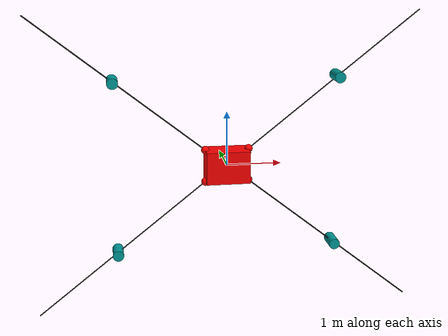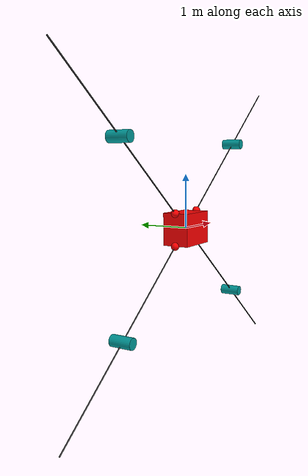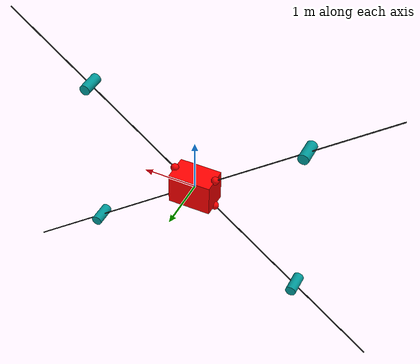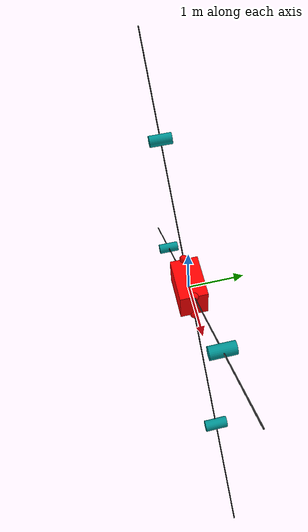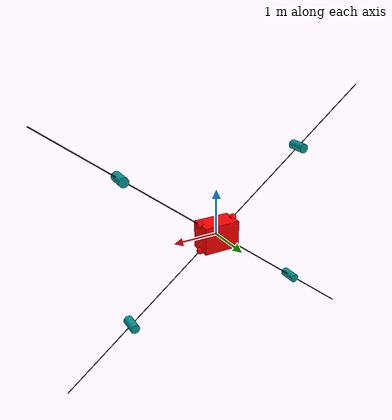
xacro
<?xml version="1.0"?>
<robot xmlns:xacro="http://www.ros.org/wiki/xacro" name="wallbot">
    <xacro:arg name="initial_positions_file" default="initial_positions.yaml" />

    <!-- Import wallbot urdf file -->
    <xacro:include filename="$(find wallbot_urdf)/urdf/wallbot.urdf" />

    <!-- Import control_xacro -->
    <xacro:include filename="wallbot.ros2_control.xacro" />

    <xacro:wallbot_ros2_control name="FakeSystem" initial_positions_file="$(arg initial_positions_file)"/>

</robot>

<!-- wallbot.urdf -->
<robot name="wallbot">

    <material name="cable_grey">
        <color rgba="0.2 0.2 0.2 1"/>
    </material>

    <material name="anchor_green">
        <color rgba="0 0.6 0.6 1"/>
    </material>

    <material name="wallbot_red">
        <color rgba="1 0 0 1"/>
    </material>

    <link name="central_body">
        <visual>
            <geometry>
                <box size="0.8 0.5 0.6"/>
            </geometry>
            <material name="wallbot_red"/>
        </visual>
    </link>

    <!--Top Left Links-->

    <link name="top_left_socket">
        <visual>
            <geometry>
                <sphere radius="0.075"/>
            </geometry>
            <material name="wallbot_red"/>
        </visual>
    </link>

    <link name="top_left_cable">
        <visual>
            <geometry>
                <cylinder length="4" radius="0.01"/>
            </geometry>
            <material name="cable_grey"/>
            <origin xyz="0 0 2" rpy="0 0 0"/>
        </visual>
    </link>
    <link name="top_left_anchor">
        <visual>
            <geometry>
                <cylinder length="0.4" radius="0.1"/>
            </geometry>
            <material name="anchor_green"/>
            <origin rpy="1.57075 0 0" xyz="0 0 0.1"/>
        </visual>
    </link>

    <!--Top Left Joints (Fixed -> Revolute -> Prismatic)-->

    <joint name="base_to_top_left_socket" type="fixed">
        <parent link="central_body"/>
        <child link="top_left_socket"/>
        <origin xyz="0.4 0 0.3"/>
    </joint>

    <joint name="top_left_socket_cable_connector" type="revolute">
        <axis xyz="0 1 0"/>
        <limit effort="1000.00" lower="-1.57" upper="1.57" velocity="0.5"/>
        <parent link="top_left_socket"/>
        <child link="top_left_cable"/>
        <origin xyz="0 0 0" rpy="0 0.9 0"/>
    </joint>

    <joint name="top_left_prismatic_joint" type="prismatic">
        <axis xyz="0 0 1"/>
        <limit effort="1000.00" lower="-2.0" upper="2.0" velocity="0.5"/>
        <parent link="top_left_cable"/>
        <child link="top_left_anchor"/>
        <origin xyz="0 0 2"/>
    </joint>

    <!--Top Right Links-->

    <link name="top_right_socket">
        <visual>
            <geometry>
                <sphere radius="0.075"/>
            </geometry>
            <material name="wallbot_red"/>
        </visual>
    </link>

    <link name="top_right_cable">
        <visual>
            <geometry>
                <cylinder length="4" radius="0.01"/>
            </geometry>
            <material name="cable_grey"/>
            <origin xyz="0 0 2" rpy="0 0 0"/>
        </visual>
    </link>
    <link name="top_right_anchor">
        <visual>
            <geometry>
                <cylinder length="0.4" radius="0.1"/>
            </geometry>
            <material name="anchor_green"/>
            <origin rpy="1.57075 0 0" xyz="0 0 0.1"/>
        </visual>
    </link>

    <!--Top Right Joints (Fixed -> Revolute -> Prismatic)-->

    <joint name="base_to_top_right_socket" type="fixed">
        <parent link="central_body"/>
        <child link="top_right_socket"/>
        <origin xyz="-0.4 0 0.3"/>
    </joint>

    <joint name="top_right_socket_cable_connector" type="revolute">
        <axis xyz="0 1 0"/>
        <limit effort="1000.00" lower="-1.57" upper="1.57" velocity="0.5"/>
        <parent link="top_right_socket"/>
        <child link="top_right_cable"/>
        <origin xyz="0 0 0" rpy="0 -0.9 0"/>
    </joint>

    <joint name="top_right_prismatic_joint" type="prismatic">
        <axis xyz="0 0 1"/>
        <limit effort="1000.00" lower="-2.0" upper="2.0" velocity="0.5"/>
        <parent link="top_right_cable"/>
        <child link="top_right_anchor"/>
        <origin xyz="0 0 2"/>
    </joint>

    <!--Bottom Left Links-->

    <link name="bottom_left_socket">
        <visual>
            <geometry>
                <sphere radius="0.075"/>
            </geometry>
            <material name="wallbot_red"/>
        </visual>
    </link>

    <link name="bottom_left_cable">
        <visual>
            <geometry>
                <cylinder length="4" radius="0.01"/>
            </geometry>
            <material name="cable_grey"/>
            <origin xyz="0 0 2" rpy="0 0 0"/>
        </visual>
    </link>
    <link name="bottom_left_anchor">
        <visual>
            <geometry>
                <cylinder length="0.4" radius="0.1"/>
            </geometry>
            <material name="anchor_green"/>
            <origin rpy="1.57075 0 0" xyz="0 0 0.1"/>
        </visual>
    </link>

    <!--Bottom Left Joints (Fixed -> Revolute -> Prismatic)-->

    <joint name="base_to_bottom_left_socket" type="fixed">
        <parent link="central_body"/>
        <child link="bottom_left_socket"/>
        <origin xyz="0.4 0 -0.3"/>
    </joint>

    <joint name="bottom_left_socket_cable_connector" type="revolute">
        <axis xyz="0 1 0"/>
        <limit effort="1000.00" lower="-1.57" upper="1.57" velocity="0.5"/>
        <parent link="bottom_left_socket"/>
        <child link="bottom_left_cable"/>
        <origin xyz="0 0 0" rpy="0 2.24159 0"/>
    </joint>

    <joint name="bottom_left_prismatic_joint" type="prismatic">
        <axis xyz="0 0 1"/>
        <limit effort="1000.00" lower="-2.0" upper="2.0" velocity="0.5"/>
        <parent link="bottom_left_cable"/>
        <child link="bottom_left_anchor"/>
        <origin xyz="0 0 2"/>
    </joint>

    <!--Bottom Right Links-->

    <link name="bottom_right_socket">
        <visual>
            <geometry>
                <sphere radius="0.075"/>
            </geometry>
            <material name="wallbot_red"/>
        </visual>

    </link>

    <link name="bottom_right_cable">
        <visual>
            <geometry>
                <cylinder length="4" radius="0.01"/>
            </geometry>
            <material name="cable_grey"/>
            <origin xyz="0 0 2" rpy="0 0 0"/>
        </visual>
    </link>
    <link name="bottom_right_anchor">
        <visual>
            <geometry>
                <cylinder length="0.4" radius="0.1"/>
            </geometry>
            <material name="anchor_green"/>
            <origin rpy="1.57075 0 0" xyz="0 0 0.1"/>
        </visual>
    </link>

    <!--Bottom Right Joints (Fixed -> Revolute -> Prismatic)-->

    <joint name="base_to_bottom_right_socket" type="fixed">
        <parent link="central_body"/>
        <child link="bottom_right_socket"/>
        <origin xyz="-0.4 0 -0.3"/>
    </joint>

    <joint name="bottom_right_socket_cable_connector" type="revolute">
        <axis xyz="0 1 0"/>
        <limit effort="1000.00" lower="-1.57" upper="1.57" velocity="0.5"/>
        <parent link="bottom_right_socket"/>
        <child link="bottom_right_cable"/>
        <origin xyz="0 0 0" rpy="0 -2.24159 0"/>
    </joint>

    <joint name="bottom_right_prismatic_joint" type="prismatic">
        <axis xyz="0 0 1"/>
        <limit effort="1000.00" lower="-2.0" upper="2.0" velocity="0.5"/>
        <parent link="bottom_right_cable"/>
        <child link="bottom_right_anchor"/>
        <origin xyz="0 0 2"/>
    </joint>

</robot>
